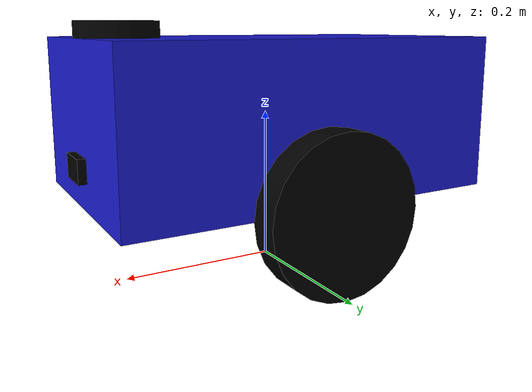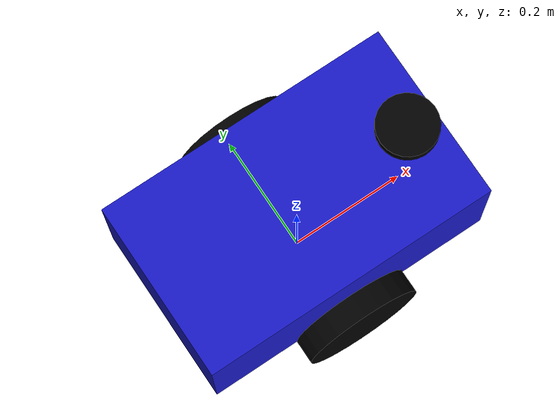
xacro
<?xml version="1.0"?>
<robot name="inspector_bot" xmlns:xacro="http://www.ros.org/wiki/xacro">

  <xacro:property name="chassis_length" value="0.5"/>
  <xacro:property name="chassis_width"  value="0.3"/>
  <xacro:property name="chassis_height" value="0.2"/>
  <xacro:property name="chassis_mass"   value="15.0"/>
  <xacro:property name="wheel_radius"   value="0.1"/>
  <xacro:property name="wheel_length"   value="0.04"/>
  <xacro:property name="wheel_ygap"     value="0.02"/>
  <xacro:property name="wheel_mass"     value="1.5"/>
  <xacro:property name="ground_clearance" value="${wheel_radius}"/>
  <xacro:property name="caster_radius" value="${ground_clearance / 2}"/>

  <xacro:macro name="box_inertia" params="m l w h">
    <inertial>
      <origin xyz="0 0 0" rpy="0 0 0"/>
      <mass value="${m}"/>
      <inertia ixx="${(1/12) * m * (w*w + h*h)}" ixy="0.0" ixz="0.0"
               iyy="${(1/12) * m * (l*l + h*h)}" iyz="0.0"
               izz="${(1/12) * m * (l*l + w*w)}"/>
    </inertial>
  </xacro:macro>

  <xacro:macro name="cylinder_inertia" params="m r h">
    <inertial>
      <origin xyz="0 0 0" rpy="0 0 0"/>
      <mass value="${m}"/>
      <inertia ixx="${(1/12) * m * (3*r*r + h*h)}" ixy="0.0" ixz="0.0"
               iyy="${(1/12) * m * (3*r*r + h*h)}" iyz="0.0"
               izz="${(1/2) * m * r*r}"/>
    </inertial>
  </xacro:macro>

  <link name="base_footprint"/>

  <joint name="base_footprint_joint" type="fixed">
    <parent link="base_footprint"/>
    <child link="base_link"/>
    <origin xyz="0 0 0" rpy="0 0 0"/>
  </joint>

  <link name="base_link">
    <visual>
      <origin xyz="0 0 ${ground_clearance + (chassis_height/2)}" rpy="0 0 0"/>
      <geometry><box size="${chassis_length} ${chassis_width} ${chassis_height}"/></geometry>
      <material name="blue"><color rgba="0.1 0.1 0.8 1.0"/></material>
    </visual>
    <collision>
      <origin xyz="0 0 ${ground_clearance + (chassis_height/2)}" rpy="0 0 0"/>
      <geometry><box size="${chassis_length} ${chassis_width} ${chassis_height}"/></geometry>
    </collision>
    <xacro:box_inertia m="${chassis_mass}" l="${chassis_length}" w="${chassis_width}" h="${chassis_height}"/>
  </link>

  <xacro:macro name="wheel" params="prefix y_reflect">
    <link name="${prefix}_wheel">
      <visual>
        <geometry><cylinder radius="${wheel_radius}" length="${wheel_length}"/></geometry>
        <material name="black"><color rgba="0.0 0.0 0.0 1.0"/></material>
      </visual>
      <collision>
        <geometry><cylinder radius="${wheel_radius}" length="${wheel_length}"/></geometry>
      </collision>
      <xacro:cylinder_inertia m="${wheel_mass}" r="${wheel_radius}" h="${wheel_length}"/>
    </link>

    <joint name="${prefix}_wheel_joint" type="continuous">
      <parent link="base_link"/>
      <child link="${prefix}_wheel"/>
      <origin xyz="0 ${(chassis_width/2 + wheel_length/2) * y_reflect} ${wheel_radius}" rpy="-${pi/2} 0 0"/>
      <axis xyz="0 0 1"/>
      <dynamics damping="0.1" friction="0.1"/>
    </joint>
  </xacro:macro>

  <xacro:wheel prefix="left"  y_reflect="1" />
  <xacro:wheel prefix="right" y_reflect="-1" />

  <link name="laser_frame">
    <visual>
      <geometry>
        <cylinder radius="0.05" length="0.04"/>
      </geometry>
      <material name="black"/>
    </visual>
    <collision>
      <geometry>
        <cylinder radius="0.05" length="0.04"/>
      </geometry>
    </collision>
    <inertial>
      <mass value="0.1"/>
      <inertia ixx="0.0001" ixy="0.0" ixz="0.0" iyy="0.0001" iyz="0.0" izz="0.0001"/>
    </inertial>
  </link>

  <joint name="laser_joint" type="fixed">
    <parent link="base_link"/>
    <child link="laser_frame"/>
    <origin xyz="0.2 0.0 ${ground_clearance + chassis_height}" rpy="0 0 0"/>
  </joint>

  <link name="camera_link">
    <visual>
      <geometry><box size="0.02 0.05 0.03"/></geometry>
      <material name="black"/>
    </visual>
    <collision>
      <geometry><box size="0.02 0.05 0.03"/></geometry>
    </collision>
    <inertial>
      <mass value="0.05"/>
      <inertia ixx="0.0001" ixy="0" ixz="0" iyy="0.0001" iyz="0" izz="0.0001"/>
    </inertial>
  </link>

  <joint name="camera_joint" type="fixed">
    <parent link="base_link"/>
    <child link="camera_link"/>
    <origin xyz="${chassis_length/2} 0.0 ${chassis_height/2 + 0.05}" rpy="0 0 0"/>
  </joint>

  <link name="caster_wheel">
    <visual>
      <geometry><sphere radius="${caster_radius}"/></geometry>
      <material name="black"/>
    </visual>
    <collision>
      <geometry><sphere radius="${caster_radius}"/></geometry>
    </collision>
    <inertial>
      <mass value="0.5"/>
      <inertia ixx="0.001" ixy="0.0" ixz="0.0" iyy="0.001" iyz="0.0" izz="0.001"/>
    </inertial>
  </link>

  <joint name="caster_wheel_joint" type="fixed">
    <parent link="base_link"/>
    <child link="caster_wheel"/>
    <origin xyz="-${chassis_length/3} 0.0 ${caster_radius}" rpy="0 0 0"/>
  </joint>

  <ros2_control name="GazeboSimSystem" type="system">

    <hardware>
      <plugin>gz_ros2_control/GazeboSimSystem</plugin>
    </hardware>

    <joint name="left_wheel_joint">
      <command_interface name="velocity">
        <param name="min">-10</param>
        <param name="max">10</param>
      </command_interface>
      <state_interface name="position"/>
      <state_interface name="velocity"/>
    </joint>

    <joint name="right_wheel_joint">
      <command_interface name="velocity">
        <param name="min">-10</param>
        <param name="max">10</param>
      </command_interface>
      <state_interface name="position"/>
      <state_interface name="velocity"/>
    </joint>

  </ros2_control>

  <gazebo reference="base_link">
    <material>Gazebo/Blue</material>
  </gazebo>

  <gazebo reference="left_wheel">
    <mu1>1.0</mu1>
    <mu2>1.0</mu2>
    <material>Gazebo/Black</material>
  </gazebo>

  <gazebo reference="right_wheel">
    <mu1>1.0</mu1>
    <mu2>1.0</mu2>
    <material>Gazebo/Black</material>
  </gazebo>

  <gazebo reference="caster_wheel">
    <mu1>0.0</mu1>
    <mu2>0.0</mu2>
    <material>Gazebo/Black</material>
  </gazebo>

  <gazebo>
    <plugin filename="gz_ros2_control-system" name="gz_ros2_control::GazeboSimROS2ControlPlugin">
      <parameters>$(find inspector_bot)/config/controllers.yaml</parameters>

    </plugin>
  </gazebo>

  <gazebo reference="laser_frame">
    <material>Gazebo/Black</material>
    <sensor name="laser" type="gpu_lidar">
      <pose>0 0 0 0 0 0</pose>
      <visualize>true</visualize>
      <update_rate>10</update_rate>
      <topic>scan</topic>
      <gz_frame_id>laser_frame</gz_frame_id>
      <lidar>
        <scan>
          <horizontal>
            <samples>360</samples>
            <resolution>1</resolution>
            <min_angle>-3.14159</min_angle>
            <max_angle>3.14159</max_angle>
          </horizontal>
        </scan>
        <range>
          <min>0.3</min>
          <max>12.0</max>
          <resolution>0.01</resolution>
        </range>
      </lidar>
    </sensor>
  </gazebo>

  <gazebo reference="camera_link">
    <sensor name="inspection_camera" type="rgbd_camera">
      <camera>
        <horizontal_fov>1.047</horizontal_fov>
        <image>
          <width>640</width>
          <height>480</height>
          <format>R8G8B8</format>
        </image>
        <clip>
          <near>0.1</near>
          <far>10.0</far>
        </clip>
      </camera>
      <always_on>1</always_on>
      <update_rate>10</update_rate>
      <visualize>true</visualize>
      <topic>camera</topic>
      <gz_frame_id>camera_link</gz_frame_id>
    </sensor>
  </gazebo>

  </robot>
